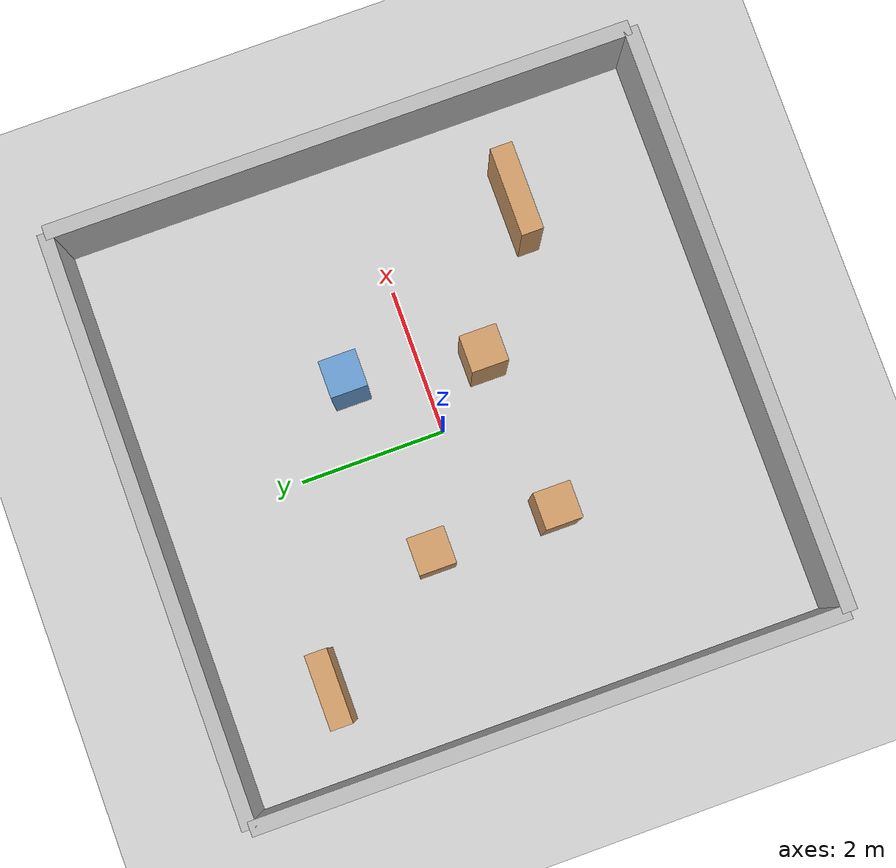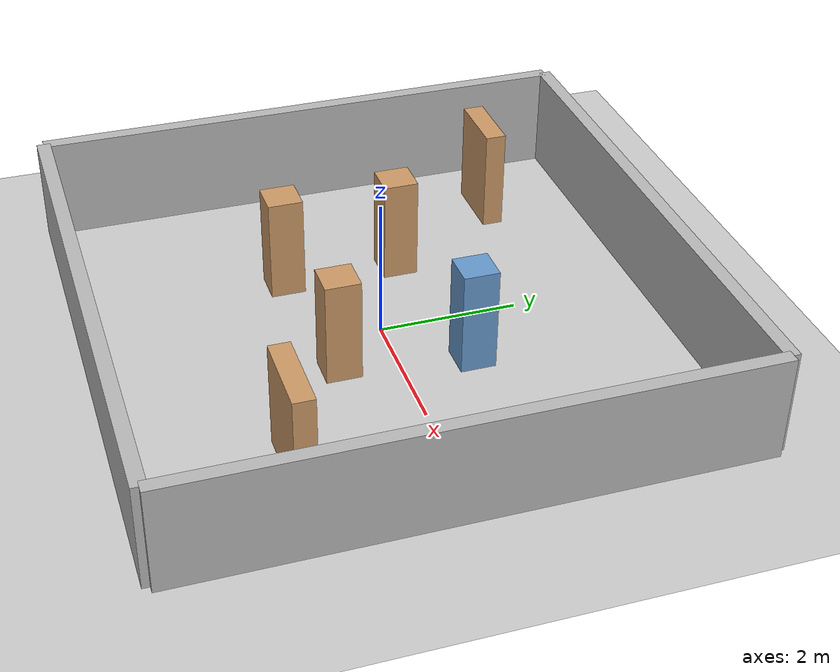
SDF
<sdf version="1.8">
 <world name="demo">
  <plugin filename="gz-sim-physics-system" name="gz::sim::systems::Physics"/>
  <plugin filename="gz-sim-sensors-system" name="gz::sim::systems::Sensors">
   <render_engine>ogre2</render_engine>
  </plugin>
  <plugin filename="gz-sim-scene-broadcaster-system" name="gz::sim::systems::SceneBroadcaster"/>
  <plugin filename="gz-sim-user-commands-system" name="gz::sim::systems::UserCommands"/>
  <light name="sun" type="directional">
   <pose>0 0 10 0 0 0</pose>
   <diffuse>0.8 0.8 0.8 1</diffuse>
   <specular>0.2 0.2 0.2 1</specular>
   <attenuation>
    <range>1000</range>
    <constant>0.9</constant>
    <linear>0.01</linear>
    <quadratic>0.001</quadratic>
   </attenuation>
   <direction>-0.5 0.1 -0.9</direction>
  </light>
  <model name="ground_plane">
   <static>true</static>
   <link name="link">
    <collision name="collision">
     <geometry><plane><normal>0 0 1</normal><size>100 100</size></plane></geometry>
    </collision>
    <visual name="visual">
     <geometry><plane><normal>0 0 1</normal><size>100 100</size></plane></geometry>
     <material>
      <ambient>0.8 0.8 0.8 1</ambient>
      <diffuse>0.8 0.8 0.8 1</diffuse>
      <specular>0.8 0.8 0.8 1</specular>
     </material>
    </visual>
   </link>
  </model>
  <model name="wall1">
   <pose>4 0 0.5 0 0 0</pose>
   <link name="link">
    <collision name="collision"><geometry><box><size>0.2 8 2</size></box></geometry></collision>
    <visual name="visual"><geometry><box><size>0.2 8 2</size></box></geometry></visual>
   </link>
  </model>
  <model name="wall2">
   <pose>-4 0 0.5 0 0 0</pose>
   <static>true</static>
   <link name="link">
    <collision name="collision"><geometry><box><size>0.2 8 2</size></box></geometry></collision>
    <visual name="visual"><geometry><box><size>0.2 8 2</size></box></geometry></visual>
   </link>
  </model>
  <model name="wall3">
   <pose>0 4 0.5 0 0 1.57</pose>
   <static>true</static>
   <link name="link">
    <collision name="collision"><geometry><box><size>0.2 8 2</size></box></geometry></collision>
    <visual name="visual"><geometry><box><size>0.2 8 2</size></box></geometry></visual>
   </link>
  </model>
  <model name="wall4">
   <static>true</static>
   <pose>0 -4 0.5 0 0 1.57</pose>
   <link name="link">
    <collision name="collision"><geometry><box><size>0.2 8 2</size></box></geometry></collision>
    <visual name="visual"><geometry><box><size>0.2 8 2</size></box></geometry></visual>
   </link>
  </model>
  <model name="pillar_1">
   <static>true</static>
   <pose>1 1 0.5 0 0 0</pose>
   <link name="link">
    <collision name="collision"><geometry><box><size>0.5 0.5 2.0</size></box></geometry></collision>
    <visual name="visual">
     <geometry><box><size>0.5 0.5 2.0</size></box></geometry>
     <material><ambient>0.4 0.6 0.8 1</ambient><diffuse>0.4 0.6 0.8 1</diffuse></material>
    </visual>
   </link>
  </model>
  <model name="pillar_2">
   <static>true</static>
   <pose>-1.5 -1 0.5 0 0 0</pose>
   <link name="link">
    <collision name="collision"><geometry><box><size>0.5 0.5 2.0</size></box></geometry></collision>
    <visual name="visual">
     <geometry><box><size>0.5 0.5 2.0</size></box></geometry>
     <material><ambient>0.8 0.6 0.4 1</ambient><diffuse>0.8 0.6 0.4 1</diffuse></material>
    </visual>
   </link>
  </model>
  <model name="pillar_3">
   <static>true</static>
   <pose>-1.5 0.7 0.5 0 0 0</pose>
   <link name="link">
    <collision name="collision"><geometry><box><size>0.5 0.5 2.0</size></box></geometry></collision>
    <visual name="visual">
     <geometry><box><size>0.5 0.5 2.0</size></box></geometry>
     <material><ambient>0.8 0.6 0.4 1</ambient><diffuse>0.8 0.6 0.4 1</diffuse></material>
    </visual>
   </link>
  </model>
  <model name="pillar_4">
   <static>true</static>
   <pose>0.7 -0.8 0.5 0 0 0</pose>
   <link name="link">
    <collision name="collision"><geometry><box><size>0.5 0.5 2.0</size></box></geometry></collision>
    <visual name="visual">
     <geometry><box><size>0.5 0.5 2.0</size></box></geometry>
     <material><ambient>0.8 0.6 0.4 1</ambient><diffuse>0.8 0.6 0.4 1</diffuse></material>
    </visual>
   </link>
  </model>
  <model name="pillar_5">
   <static>true</static>
   <pose>2.5 -1.9 0.5 0 0 0</pose>
   <link name="link">
    <collision name="collision"><geometry><box><size>1.2 0.3 2.0</size></box></geometry></collision>
    <visual name="visual">
     <geometry><box><size>1.2 0.3 2.0</size></box></geometry>
     <material><ambient>0.8 0.6 0.4 1</ambient><diffuse>0.8 0.6 0.4 1</diffuse></material>
    </visual>
   </link>
  </model>
  <model name="pillar_6">
   <static>true</static>
   <pose>-2.7 2.5 0.5 0 0 0</pose>
   <link name="link">
    <collision name="collision"><geometry><box><size>1 0.3 2.0</size></box></geometry></collision>
    <visual name="visual">
     <geometry><box><size>1 0.3 2.0</size></box></geometry>
     <material><ambient>0.8 0.6 0.4 1</ambient><diffuse>0.8 0.6 0.4 1</diffuse></material>
    </visual>
   </link>
  </model>
 </world>
</sdf>
